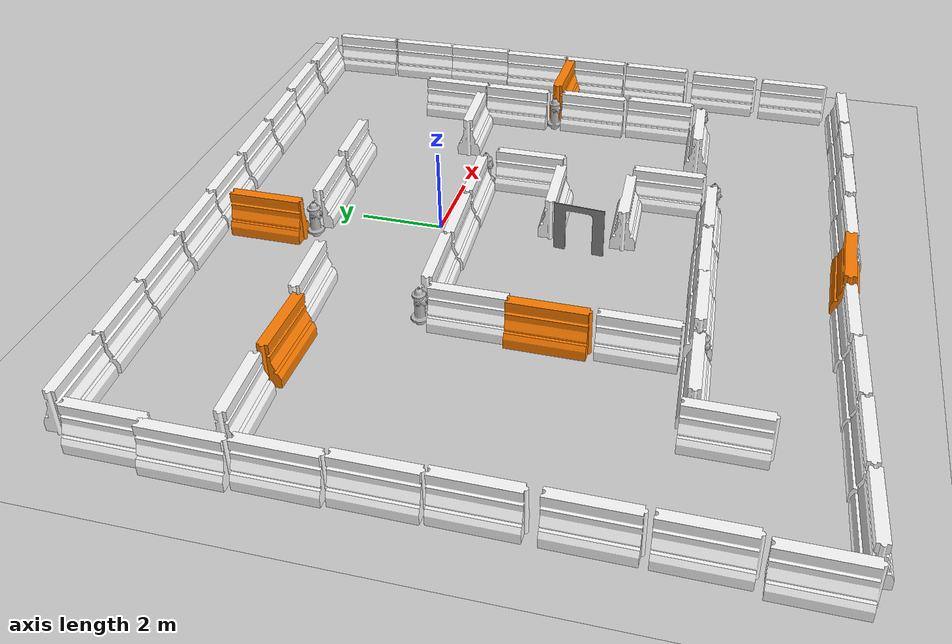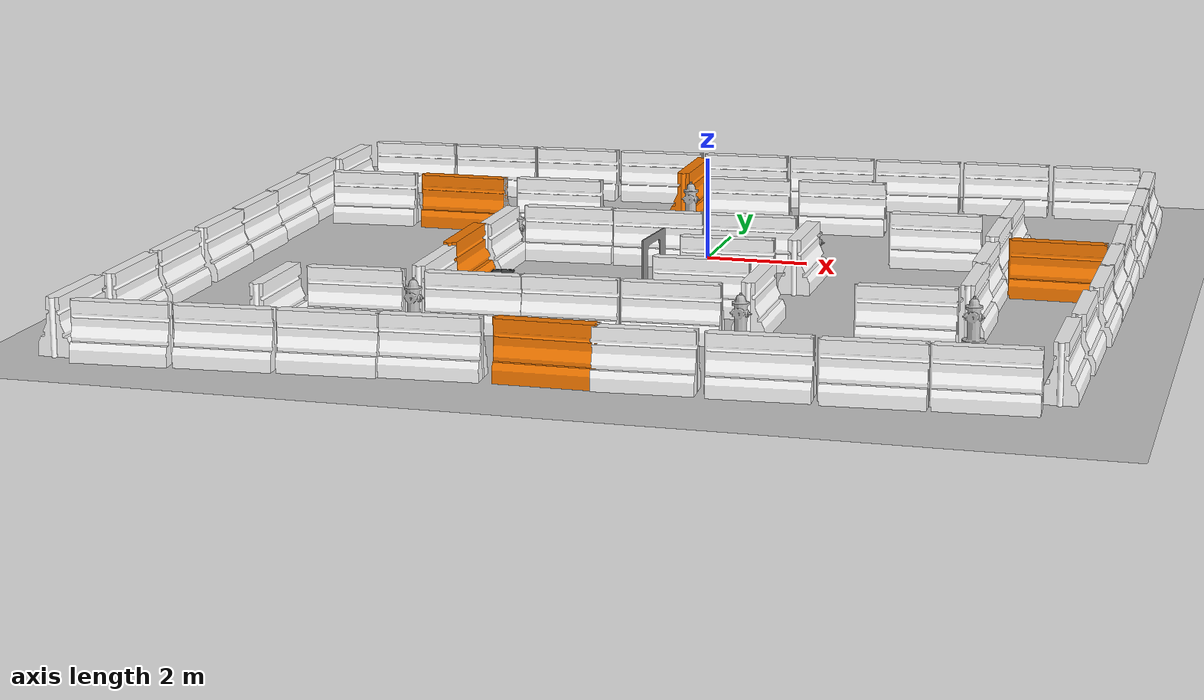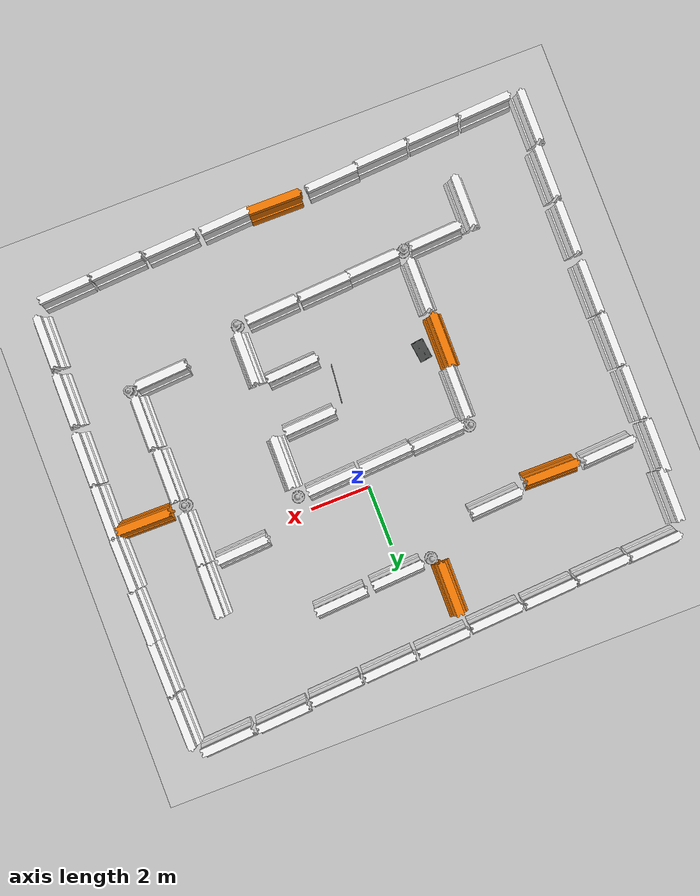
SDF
<sdf version="1.7">
 <world name="default">
  <light name="sun" type="directional">
   <pose>0 0 10 0 -0 0</pose>
   <diffuse>0.8 0.8 0.8 1</diffuse>
   <specular>0.2 0.2 0.2 1</specular>
   <attenuation>
    <range>1000</range>
    <constant>0.9</constant>
    <linear>0.01</linear>
    <quadratic>0.001</quadratic>
   </attenuation>
   <direction>-0.5 0.1 -0.9</direction>
   <spot><inner_angle>0</inner_angle><outer_angle>0</outer_angle><falloff>0</falloff></spot>
  </light>
  <model name="ground_plane">
   <static>1</static>
   <link name="link">
    <collision name="collision">
     <geometry><plane><normal>0 0 1</normal><size>100 100</size></plane></geometry>
     <surface><friction><ode><mu>100</mu><mu2>50</mu2></ode></friction></surface>
    </collision>
    <visual name="visual">
     <cast_shadows>0</cast_shadows>
     <geometry><plane><normal>0 0 1</normal><size>100 100</size></plane></geometry>
     <material>
      <script><uri>file://media/materials/scripts/gazebo.material</uri><name>Gazebo/Grey</name></script>
     </material>
    </visual>
   </link>
  </model>
  <gravity>0 0 -9.8</gravity>
  <magnetic_field>6e-06 2.3e-05 -4.2e-05</magnetic_field>
  <atmosphere type="adiabatic"/>
  <physics type="ode">
   <max_step_size>0.001</max_step_size>
   <real_time_factor>1</real_time_factor>
   <real_time_update_rate>1000</real_time_update_rate>
  </physics>
  <scene><ambient>0.4 0.4 0.4 1</ambient><background>0.7 0.7 0.7 1</background><shadows>1</shadows></scene>
  <spherical_coordinates>
   <surface_model>EARTH_WGS84</surface_model>
   <latitude_deg>0</latitude_deg>
   <longitude_deg>0</longitude_deg>
   <elevation>0</elevation>
   <heading_deg>0</heading_deg>
  </spherical_coordinates>
  <model name="drc_practice_white_jersey_barrier">
   <static>1</static>
   <link name="link">
    <visual name="visual">
     <geometry>
      <mesh><uri>model://drc_practice_white_jersey_barrier/meshes/jersey_barrier.dae</uri></mesh>
     </geometry>
    </visual>
    <collision name="collision">
     <geometry>
      <mesh><uri>model://drc_practice_white_jersey_barrier/meshes/jersey_barrier.dae</uri></mesh>
     </geometry>
    </collision>
   </link>
   <pose>2.28293 -1.69761 0 0 -0 0</pose>
  </model>
  <model name="drc_practice_white_jersey_barrier_clone_0">
   <static>1</static>
   <link name="link">
    <visual name="visual">
     <geometry>
      <mesh><uri>model://drc_practice_white_jersey_barrier/meshes/jersey_barrier.dae</uri></mesh>
     </geometry>
    </visual>
    <collision name="collision">
     <geometry>
      <mesh><uri>model://drc_practice_white_jersey_barrier/meshes/jersey_barrier.dae</uri></mesh>
     </geometry>
    </collision>
   </link>
   <pose>2.20471 -5.22278 0 0 -0 0</pose>
  </model>
  <model name="drc_practice_white_jersey_barrier_clone_1">
   <static>1</static>
   <link name="link">
    <visual name="visual">
     <geometry>
      <mesh><uri>model://drc_practice_white_jersey_barrier/meshes/jersey_barrier.dae</uri></mesh>
     </geometry>
    </visual>
    <collision name="collision">
     <geometry>
      <mesh><uri>model://drc_practice_white_jersey_barrier/meshes/jersey_barrier.dae</uri></mesh>
     </geometry>
    </collision>
   </link>
   <pose>0.923191 -6.38924 0 0 0 -1.50381</pose>
  </model>
  <model name="drc_practice_white_jersey_barrier_clone_1_clone">
   <static>1</static>
   <link name="link">
    <visual name="visual">
     <geometry>
      <mesh><uri>model://drc_practice_white_jersey_barrier/meshes/jersey_barrier.dae</uri></mesh>
     </geometry>
    </visual>
    <collision name="collision">
     <geometry>
      <mesh><uri>model://drc_practice_white_jersey_barrier/meshes/jersey_barrier.dae</uri></mesh>
     </geometry>
    </collision>
   </link>
   <pose>-0.90797 -6.48566 0 0 0 -1.50381</pose>
  </model>
  <model name="drc_practice_white_jersey_barrier_clone_1_clone_0">
   <static>1</static>
   <link name="link">
    <visual name="visual">
     <geometry>
      <mesh><uri>model://drc_practice_white_jersey_barrier/meshes/jersey_barrier.dae</uri></mesh>
     </geometry>
    </visual>
    <collision name="collision">
     <geometry>
      <mesh><uri>model://drc_practice_white_jersey_barrier/meshes/jersey_barrier.dae</uri></mesh>
     </geometry>
    </collision>
   </link>
   <pose>-2.63238 -6.61634 0 0 0 -1.50381</pose>
  </model>
  <model name="drc_practice_white_jersey_barrier_clone_0_clone">
   <static>1</static>
   <link name="link">
    <visual name="visual">
     <geometry>
      <mesh><uri>model://drc_practice_white_jersey_barrier/meshes/jersey_barrier.dae</uri></mesh>
     </geometry>
    </visual>
    <collision name="collision">
     <geometry>
      <mesh><uri>model://drc_practice_white_jersey_barrier/meshes/jersey_barrier.dae</uri></mesh>
     </geometry>
    </collision>
   </link>
   <pose>-3.78567 -5.4642 0 0 -0 0</pose>
  </model>
  <model name="drc_practice_white_jersey_barrier_clone_0_clone_1">
   <static>1</static>
   <link name="link">
    <visual name="visual">
     <geometry>
      <mesh><uri>model://drc_practice_white_jersey_barrier/meshes/jersey_barrier.dae</uri></mesh>
     </geometry>
    </visual>
    <collision name="collision">
     <geometry>
      <mesh><uri>model://drc_practice_white_jersey_barrier/meshes/jersey_barrier.dae</uri></mesh>
     </geometry>
    </collision>
   </link>
   <pose>-3.72738 -1.82263 0 0 -0 0</pose>
  </model>
  <model name="drc_practice_white_jersey_barrier_clone_1_clone_0_clone">
   <static>1</static>
   <link name="link">
    <visual name="visual">
     <geometry>
      <mesh><uri>model://drc_practice_white_jersey_barrier/meshes/jersey_barrier.dae</uri></mesh>
     </geometry>
    </visual>
    <collision name="collision">
     <geometry>
      <mesh><uri>model://drc_practice_white_jersey_barrier/meshes/jersey_barrier.dae</uri></mesh>
     </geometry>
    </collision>
   </link>
   <pose>1.03443 -0.601917 0 0 0 -1.50381</pose>
  </model>
  <model name="drc_practice_white_jersey_barrier_clone_1_clone_0_clone_0">
   <static>1</static>
   <link name="link">
    <visual name="visual">
     <geometry>
      <mesh><uri>model://drc_practice_white_jersey_barrier/meshes/jersey_barrier.dae</uri></mesh>
     </geometry>
    </visual>
    <collision name="collision">
     <geometry>
      <mesh><uri>model://drc_practice_white_jersey_barrier/meshes/jersey_barrier.dae</uri></mesh>
     </geometry>
    </collision>
   </link>
   <pose>-0.802949 -0.700075 0 0 0 -1.50381</pose>
  </model>
  <model name="drc_practice_white_jersey_barrier_clone_1_clone_0_clone_1">
   <static>1</static>
   <link name="link">
    <visual name="visual">
     <geometry>
      <mesh><uri>model://drc_practice_white_jersey_barrier/meshes/jersey_barrier.dae</uri></mesh>
     </geometry>
    </visual>
    <collision name="collision">
     <geometry>
      <mesh><uri>model://drc_practice_white_jersey_barrier/meshes/jersey_barrier.dae</uri></mesh>
     </geometry>
    </collision>
   </link>
   <pose>-2.58924 -0.762928 0 0 0 -1.50381</pose>
  </model>
  <model name="drc_practice_white_jersey_barrier_clone_1_clone_0_clone_0_clone">
   <static>1</static>
   <link name="link">
    <visual name="visual">
     <geometry>
      <mesh><uri>model://drc_practice_white_jersey_barrier/meshes/jersey_barrier.dae</uri></mesh>
     </geometry>
    </visual>
    <collision name="collision">
     <geometry>
      <mesh><uri>model://drc_practice_white_jersey_barrier/meshes/jersey_barrier.dae</uri></mesh>
     </geometry>
    </collision>
   </link>
   <pose>-4.14717 5.13906 0 0 0 -1.50381</pose>
  </model>
  <model name="drc_practice_white_jersey_barrier_clone_1_clone_0_clone_0_clone_0">
   <static>1</static>
   <link name="link">
    <visual name="visual">
     <geometry>
      <mesh><uri>model://drc_practice_white_jersey_barrier/meshes/jersey_barrier.dae</uri></mesh>
     </geometry>
    </visual>
    <collision name="collision">
     <geometry>
      <mesh><uri>model://drc_practice_white_jersey_barrier/meshes/jersey_barrier.dae</uri></mesh>
     </geometry>
    </collision>
   </link>
   <pose>-2.28002 5.23585 0 0 0 -1.50381</pose>
  </model>
  <model name="drc_practice_white_jersey_barrier_clone_1_clone_0_clone_0_clone_1">
   <static>1</static>
   <link name="link">
    <visual name="visual">
     <geometry>
      <mesh><uri>model://drc_practice_white_jersey_barrier/meshes/jersey_barrier.dae</uri></mesh>
     </geometry>
    </visual>
    <collision name="collision">
     <geometry>
      <mesh><uri>model://drc_practice_white_jersey_barrier/meshes/jersey_barrier.dae</uri></mesh>
     </geometry>
    </collision>
   </link>
   <pose>-0.43229 5.39169 0 0 0 -1.50381</pose>
  </model>
  <model name="drc_practice_white_jersey_barrier_clone_1_clone_0_clone_0_clone_2">
   <static>1</static>
   <link name="link">
    <visual name="visual">
     <geometry>
      <mesh><uri>model://drc_practice_white_jersey_barrier/meshes/jersey_barrier.dae</uri></mesh>
     </geometry>
    </visual>
    <collision name="collision">
     <geometry>
      <mesh><uri>model://drc_practice_white_jersey_barrier/meshes/jersey_barrier.dae</uri></mesh>
     </geometry>
    </collision>
   </link>
   <pose>1.42528 5.4904 0 0 0 -1.50381</pose>
  </model>
  <model name="drc_practice_white_jersey_barrier_clone_1_clone_0_clone_0_clone_3">
   <static>1</static>
   <link name="link">
    <visual name="visual">
     <geometry>
      <mesh><uri>model://drc_practice_white_jersey_barrier/meshes/jersey_barrier.dae</uri></mesh>
     </geometry>
    </visual>
    <collision name="collision">
     <geometry>
      <mesh><uri>model://drc_practice_white_jersey_barrier/meshes/jersey_barrier.dae</uri></mesh>
     </geometry>
    </collision>
   </link>
   <pose>3.26826 5.60639 0 0 0 -1.50381</pose>
  </model>
  <model name="drc_practice_white_jersey_barrier_clone_1_clone_0_clone_0_clone_4">
   <static>1</static>
   <link name="link">
    <visual name="visual">
     <geometry>
      <mesh><uri>model://drc_practice_white_jersey_barrier/meshes/jersey_barrier.dae</uri></mesh>
     </geometry>
    </visual>
    <collision name="collision">
     <geometry>
      <mesh><uri>model://drc_practice_white_jersey_barrier/meshes/jersey_barrier.dae</uri></mesh>
     </geometry>
    </collision>
   </link>
   <pose>5.13372 5.78611 0 0 0 -1.50381</pose>
  </model>
  <model name="drc_practice_white_jersey_barrier_clone_1_clone_0_clone_0_clone_5">
   <static>1</static>
   <link name="link">
    <visual name="visual">
     <geometry>
      <mesh><uri>model://drc_practice_white_jersey_barrier/meshes/jersey_barrier.dae</uri></mesh>
     </geometry>
    </visual>
    <collision name="collision">
     <geometry>
      <mesh><uri>model://drc_practice_white_jersey_barrier/meshes/jersey_barrier.dae</uri></mesh>
     </geometry>
    </collision>
   </link>
   <pose>7.03167 5.86321 0 0 0 -1.50381</pose>
  </model>
  <model name="drc_practice_white_jersey_barrier_clone_1_clone_0_clone_0_clone_6">
   <static>1</static>
   <link name="link">
    <visual name="visual">
     <geometry>
      <mesh><uri>model://drc_practice_white_jersey_barrier/meshes/jersey_barrier.dae</uri></mesh>
     </geometry>
    </visual>
    <collision name="collision">
     <geometry>
      <mesh><uri>model://drc_practice_white_jersey_barrier/meshes/jersey_barrier.dae</uri></mesh>
     </geometry>
    </collision>
   </link>
   <pose>8.12545 4.81873 0 0 0 -3.11726</pose>
  </model>
  <model name="drc_practice_white_jersey_barrier_clone_1_clone_0_clone_0_clone_6_clone">
   <static>1</static>
   <link name="link">
    <visual name="visual">
     <geometry>
      <mesh><uri>model://drc_practice_white_jersey_barrier/meshes/jersey_barrier.dae</uri></mesh>
     </geometry>
    </visual>
    <collision name="collision">
     <geometry>
      <mesh><uri>model://drc_practice_white_jersey_barrier/meshes/jersey_barrier.dae</uri></mesh>
     </geometry>
    </collision>
   </link>
   <pose>8.15444 3.01091 0 0 0 -3.11726</pose>
  </model>
  <model name="drc_practice_white_jersey_barrier_clone_1_clone_0_clone_0_clone_6_clone_0">
   <static>1</static>
   <link name="link">
    <visual name="visual">
     <geometry>
      <mesh><uri>model://drc_practice_white_jersey_barrier/meshes/jersey_barrier.dae</uri></mesh>
     </geometry>
    </visual>
    <collision name="collision">
     <geometry>
      <mesh><uri>model://drc_practice_white_jersey_barrier/meshes/jersey_barrier.dae</uri></mesh>
     </geometry>
    </collision>
   </link>
   <pose>8.16977 1.28818 0 0 0 -3.11726</pose>
  </model>
  <model name="drc_practice_white_jersey_barrier_clone_1_clone_0_clone_0_clone_6_clone_1">
   <static>1</static>
   <link name="link">
    <visual name="visual">
     <geometry>
      <mesh><uri>model://drc_practice_white_jersey_barrier/meshes/jersey_barrier.dae</uri></mesh>
     </geometry>
    </visual>
    <collision name="collision">
     <geometry>
      <mesh><uri>model://drc_practice_white_jersey_barrier/meshes/jersey_barrier.dae</uri></mesh>
     </geometry>
    </collision>
   </link>
   <pose>8.12985 -0.483638 0 0 0 -3.11726</pose>
  </model>
  <model name="drc_practice_white_jersey_barrier_clone_1_clone_0_clone_0_clone_clone">
   <static>1</static>
   <link name="link">
    <visual name="visual">
     <geometry>
      <mesh><uri>model://drc_practice_white_jersey_barrier/meshes/jersey_barrier.dae</uri></mesh>
     </geometry>
    </visual>
    <collision name="collision">
     <geometry>
      <mesh><uri>model://drc_practice_white_jersey_barrier/meshes/jersey_barrier.dae</uri></mesh>
     </geometry>
    </collision>
   </link>
   <pose>-5.96478 5.01412 0 0 0 -1.50381</pose>
  </model>
  <model name="drc_practice_white_jersey_barrier_clone_1_clone_0_clone_0_clone_clone_0">
   <static>1</static>
   <link name="link">
    <visual name="visual">
     <geometry>
      <mesh><uri>model://drc_practice_white_jersey_barrier/meshes/jersey_barrier.dae</uri></mesh>
     </geometry>
    </visual>
    <collision name="collision">
     <geometry>
      <mesh><uri>model://drc_practice_white_jersey_barrier/meshes/jersey_barrier.dae</uri></mesh>
     </geometry>
    </collision>
   </link>
   <pose>-7.78928 4.92624 0 0 0 -1.50381</pose>
  </model>
  <model name="drc_practice_white_jersey_barrier_clone_0_clone_1_clone">
   <static>1</static>
   <link name="link">
    <visual name="visual">
     <geometry>
      <mesh><uri>model://drc_practice_white_jersey_barrier/meshes/jersey_barrier.dae</uri></mesh>
     </geometry>
    </visual>
    <collision name="collision">
     <geometry>
      <mesh><uri>model://drc_practice_white_jersey_barrier/meshes/jersey_barrier.dae</uri></mesh>
     </geometry>
    </collision>
   </link>
   <pose>-8.84246 3.6262 0 0 -0 0</pose>
  </model>
  <model name="drc_practice_white_jersey_barrier_clone_0_clone_1_clone_clone">
   <static>1</static>
   <link name="link">
    <visual name="visual">
     <geometry>
      <mesh><uri>model://drc_practice_white_jersey_barrier/meshes/jersey_barrier.dae</uri></mesh>
     </geometry>
    </visual>
    <collision name="collision">
     <geometry>
      <mesh><uri>model://drc_practice_white_jersey_barrier/meshes/jersey_barrier.dae</uri></mesh>
     </geometry>
    </collision>
   </link>
   <pose>-9 2 0 0 -0 0</pose>
  </model>
  <model name="drc_practice_white_jersey_barrier_clone_0_clone_1_clone_clone_clone">
   <static>1</static>
   <link name="link">
    <visual name="visual">
     <geometry>
      <mesh><uri>model://drc_practice_white_jersey_barrier/meshes/jersey_barrier.dae</uri></mesh>
     </geometry>
    </visual>
    <collision name="collision">
     <geometry>
      <mesh><uri>model://drc_practice_white_jersey_barrier/meshes/jersey_barrier.dae</uri></mesh>
     </geometry>
    </collision>
   </link>
   <pose>-8.92732 0.171485 0 0 -0 0</pose>
  </model>
  <model name="drc_practice_white_jersey_barrier_clone_0_clone_1_clone_clone_clone_0">
   <static>1</static>
   <link name="link">
    <visual name="visual">
     <geometry>
      <mesh><uri>model://drc_practice_white_jersey_barrier/meshes/jersey_barrier.dae</uri></mesh>
     </geometry>
    </visual>
    <collision name="collision">
     <geometry>
      <mesh><uri>model://drc_practice_white_jersey_barrier/meshes/jersey_barrier.dae</uri></mesh>
     </geometry>
    </collision>
   </link>
   <pose>-8.88014 -1.64956 0 0 -0 0</pose>
  </model>
  <model name="drc_practice_white_jersey_barrier_clone_0_clone_1_clone_clone_clone_1">
   <static>1</static>
   <link name="link">
    <visual name="visual">
     <geometry>
      <mesh><uri>model://drc_practice_white_jersey_barrier/meshes/jersey_barrier.dae</uri></mesh>
     </geometry>
    </visual>
    <collision name="collision">
     <geometry>
      <mesh><uri>model://drc_practice_white_jersey_barrier/meshes/jersey_barrier.dae</uri></mesh>
     </geometry>
    </collision>
   </link>
   <pose>8.13271 -2.23054 0 0 -0 0</pose>
  </model>
  <model name="drc_practice_white_jersey_barrier_clone_0_clone_1_clone_clone_clone_2">
   <static>1</static>
   <link name="link">
    <visual name="visual">
     <geometry>
      <mesh><uri>model://drc_practice_white_jersey_barrier/meshes/jersey_barrier.dae</uri></mesh>
     </geometry>
    </visual>
    <collision name="collision">
     <geometry>
      <mesh><uri>model://drc_practice_white_jersey_barrier/meshes/jersey_barrier.dae</uri></mesh>
     </geometry>
    </collision>
   </link>
   <pose>8.11804 -4.03899 0 0 -0 0</pose>
  </model>
  <model name="drc_practice_white_jersey_barrier_clone_0_clone_1_clone_clone_clone_3">
   <static>1</static>
   <link name="link">
    <visual name="visual">
     <geometry>
      <mesh><uri>model://drc_practice_white_jersey_barrier/meshes/jersey_barrier.dae</uri></mesh>
     </geometry>
    </visual>
    <collision name="collision">
     <geometry>
      <mesh><uri>model://drc_practice_white_jersey_barrier/meshes/jersey_barrier.dae</uri></mesh>
     </geometry>
    </collision>
   </link>
   <pose>8.03523 -6.0112 0 0 -0 0</pose>
  </model>
  <model name="drc_practice_white_jersey_barrier_clone_1_clone_0_clone_1_clone">
   <static>1</static>
   <link name="link">
    <visual name="visual">
     <geometry>
      <mesh><uri>model://drc_practice_white_jersey_barrier/meshes/jersey_barrier.dae</uri></mesh>
     </geometry>
    </visual>
    <collision name="collision">
     <geometry>
      <mesh><uri>model://drc_practice_white_jersey_barrier/meshes/jersey_barrier.dae</uri></mesh>
     </geometry>
    </collision>
   </link>
   <pose>1.04172 -2.64487 0 0 0 -1.50381</pose>
  </model>
  <model name="drc_practice_white_jersey_barrier_clone_1_clone_0_clone_1_clone_0">
   <static>1</static>
   <link name="link">
    <visual name="visual">
     <geometry>
      <mesh><uri>model://drc_practice_white_jersey_barrier/meshes/jersey_barrier.dae</uri></mesh>
     </geometry>
    </visual>
    <collision name="collision">
     <geometry>
      <mesh><uri>model://drc_practice_white_jersey_barrier/meshes/jersey_barrier.dae</uri></mesh>
     </geometry>
    </collision>
   </link>
   <pose>0.971986 -4.41204 0 0 0 -1.50381</pose>
  </model>
  <model name="drc_practice_white_jersey_barrier_clone_0_clone_1_clone_clone_clone_0_clone">
   <static>1</static>
   <link name="link">
    <visual name="visual">
     <geometry>
      <mesh><uri>model://drc_practice_white_jersey_barrier/meshes/jersey_barrier.dae</uri></mesh>
     </geometry>
    </visual>
    <collision name="collision">
     <geometry>
      <mesh><uri>model://drc_practice_white_jersey_barrier/meshes/jersey_barrier.dae</uri></mesh>
     </geometry>
    </collision>
   </link>
   <pose>-8.86203 -3.4675 0 0 -0 0</pose>
  </model>
  <model name="drc_practice_white_jersey_barrier_clone_0_clone_1_clone_clone_clone_0_clone_0">
   <static>1</static>
   <link name="link">
    <visual name="visual">
     <geometry>
      <mesh><uri>model://drc_practice_white_jersey_barrier/meshes/jersey_barrier.dae</uri></mesh>
     </geometry>
    </visual>
    <collision name="collision">
     <geometry>
      <mesh><uri>model://drc_practice_white_jersey_barrier/meshes/jersey_barrier.dae</uri></mesh>
     </geometry>
    </collision>
   </link>
   <pose>-8.86916 -5.49358 0 0 -0 0</pose>
  </model>
  <model name="drc_practice_white_jersey_barrier_clone_0_clone_1_clone_clone_clone_0_clone_1">
   <static>1</static>
   <link name="link">
    <visual name="visual">
     <geometry>
      <mesh><uri>model://drc_practice_white_jersey_barrier/meshes/jersey_barrier.dae</uri></mesh>
     </geometry>
    </visual>
    <collision name="collision">
     <geometry>
      <mesh><uri>model://drc_practice_white_jersey_barrier/meshes/jersey_barrier.dae</uri></mesh>
     </geometry>
    </collision>
   </link>
   <pose>-8.88549 -7.40039 0 0 -0 0</pose>
  </model>
  <model name="drc_practice_white_jersey_barrier_clone_0_clone_1_clone_clone_clone_0_clone_2">
   <static>1</static>
   <link name="link">
    <visual name="visual">
     <geometry>
      <mesh><uri>model://drc_practice_white_jersey_barrier/meshes/jersey_barrier.dae</uri></mesh>
     </geometry>
    </visual>
    <collision name="collision">
     <geometry>
      <mesh><uri>model://drc_practice_white_jersey_barrier/meshes/jersey_barrier.dae</uri></mesh>
     </geometry>
    </collision>
   </link>
   <pose>-9.03659 -9.29391 0 0 -0 0</pose>
  </model>
  <model name="drc_practice_white_jersey_barrier_clone_1_clone_0_clone_2">
   <static>1</static>
   <link name="link">
    <visual name="visual">
     <geometry>
      <mesh><uri>model://drc_practice_white_jersey_barrier/meshes/jersey_barrier.dae</uri></mesh>
     </geometry>
    </visual>
    <collision name="collision">
     <geometry>
      <mesh><uri>model://drc_practice_white_jersey_barrier/meshes/jersey_barrier.dae</uri></mesh>
     </geometry>
    </collision>
   </link>
   <pose>-7.7667 -10.1108 0 0 0 -1.50381</pose>
  </model>
  <model name="drc_practice_white_jersey_barrier_clone_1_clone_0_clone_3">
   <static>1</static>
   <link name="link">
    <visual name="visual">
     <geometry>
      <mesh><uri>model://drc_practice_white_jersey_barrier/meshes/jersey_barrier.dae</uri></mesh>
     </geometry>
    </visual>
    <collision name="collision">
     <geometry>
      <mesh><uri>model://drc_practice_white_jersey_barrier/meshes/jersey_barrier.dae</uri></mesh>
     </geometry>
    </collision>
   </link>
   <pose>-5.93558 -9.97855 0 0 0 -1.50381</pose>
  </model>
  <model name="drc_practice_white_jersey_barrier_clone_1_clone_0_clone_4">
   <static>1</static>
   <link name="link">
    <visual name="visual">
     <geometry>
      <mesh><uri>model://drc_practice_white_jersey_barrier/meshes/jersey_barrier.dae</uri></mesh>
     </geometry>
    </visual>
    <collision name="collision">
     <geometry>
      <mesh><uri>model://drc_practice_white_jersey_barrier/meshes/jersey_barrier.dae</uri></mesh>
     </geometry>
    </collision>
   </link>
   <pose>-4.12182 -9.84751 0 0 0 -1.50381</pose>
  </model>
  <model name="drc_practice_white_jersey_barrier_clone_1_clone_0_clone_5">
   <static>1</static>
   <link name="link">
    <visual name="visual">
     <geometry>
      <mesh><uri>model://drc_practice_white_jersey_barrier/meshes/jersey_barrier.dae</uri></mesh>
     </geometry>
    </visual>
    <collision name="collision">
     <geometry>
      <mesh><uri>model://drc_practice_white_jersey_barrier/meshes/jersey_barrier.dae</uri></mesh>
     </geometry>
    </collision>
   </link>
   <pose>-2.37511 -9.67534 0 0 0 -1.50381</pose>
  </model>
  <model name="drc_practice_white_jersey_barrier_clone_1_clone_0_clone_7">
   <static>1</static>
   <link name="link">
    <visual name="visual">
     <geometry>
      <mesh><uri>model://drc_practice_white_jersey_barrier/meshes/jersey_barrier.dae</uri></mesh>
     </geometry>
    </visual>
    <collision name="collision">
     <geometry>
      <mesh><uri>model://drc_practice_white_jersey_barrier/meshes/jersey_barrier.dae</uri></mesh>
     </geometry>
    </collision>
   </link>
   <pose>1.2799 -9.59989 0 0 0 -1.50381</pose>
  </model>
  <model name="drc_practice_white_jersey_barrier_clone_1_clone_0_clone_8">
   <static>1</static>
   <link name="link">
    <visual name="visual">
     <geometry>
      <mesh><uri>model://drc_practice_white_jersey_barrier/meshes/jersey_barrier.dae</uri></mesh>
     </geometry>
    </visual>
    <collision name="collision">
     <geometry>
      <mesh><uri>model://drc_practice_white_jersey_barrier/meshes/jersey_barrier.dae</uri></mesh>
     </geometry>
    </collision>
   </link>
   <pose>3.20169 -9.53003 0 0 0 -1.50381</pose>
  </model>
  <model name="drc_practice_white_jersey_barrier_clone_1_clone_0_clone_9">
   <static>1</static>
   <link name="link">
    <visual name="visual">
     <geometry>
      <mesh><uri>model://drc_practice_white_jersey_barrier/meshes/jersey_barrier.dae</uri></mesh>
     </geometry>
    </visual>
    <collision name="collision">
     <geometry>
      <mesh><uri>model://drc_practice_white_jersey_barrier/meshes/jersey_barrier.dae</uri></mesh>
     </geometry>
    </collision>
   </link>
   <pose>5.06623 -9.46271 0 0 0 -1.50381</pose>
  </model>
  <model name="drc_practice_white_jersey_barrier_clone_1_clone_0_clone_10">
   <static>1</static>
   <link name="link">
    <visual name="visual">
     <geometry>
      <mesh><uri>model://drc_practice_white_jersey_barrier/meshes/jersey_barrier.dae</uri></mesh>
     </geometry>
    </visual>
    <collision name="collision">
     <geometry>
      <mesh><uri>model://drc_practice_white_jersey_barrier/meshes/jersey_barrier.dae</uri></mesh>
     </geometry>
    </collision>
   </link>
   <pose>6.87355 -9.34117 0 0 0 -1.50381</pose>
  </model>
  <model name="drc_practice_white_jersey_barrier_clone_0_clone_1_clone_clone_clone_3_clone">
   <static>1</static>
   <link name="link">
    <visual name="visual">
     <geometry>
      <mesh><uri>model://drc_practice_white_jersey_barrier/meshes/jersey_barrier.dae</uri></mesh>
     </geometry>
    </visual>
    <collision name="collision">
     <geometry>
      <mesh><uri>model://drc_practice_white_jersey_barrier/meshes/jersey_barrier.dae</uri></mesh>
     </geometry>
    </collision>
   </link>
   <pose>7.97316 -7.96607 0 0 -0 0</pose>
  </model>
  <model name="drc_practice_white_jersey_barrier_clone_1_clone_0_clone_0_clone_clone_clone">
   <static>1</static>
   <link name="link">
    <visual name="visual">
     <geometry>
      <mesh><uri>model://drc_practice_white_jersey_barrier/meshes/jersey_barrier.dae</uri></mesh>
     </geometry>
    </visual>
    <collision name="collision">
     <geometry>
      <mesh><uri>model://drc_practice_white_jersey_barrier/meshes/jersey_barrier.dae</uri></mesh>
     </geometry>
    </collision>
   </link>
   <pose>-7.51961 1.57919 0 0 0 -1.50381</pose>
  </model>
  <model name="drc_practice_white_jersey_barrier_clone_1_clone_0_clone_0_clone_clone_clone_1">
   <static>1</static>
   <link name="link">
    <visual name="visual">
     <geometry>
      <mesh><uri>model://drc_practice_white_jersey_barrier/meshes/jersey_barrier.dae</uri></mesh>
     </geometry>
    </visual>
    <collision name="collision">
     <geometry>
      <mesh><uri>model://drc_practice_white_jersey_barrier/meshes/jersey_barrier.dae</uri></mesh>
     </geometry>
    </collision>
   </link>
   <pose>-3.58139 1.8598 0 0 0 -1.50381</pose>
  </model>
  <model name="drc_practice_white_jersey_barrier_clone_1_clone_0_clone_0_clone_clone_clone_1_clone">
   <static>1</static>
   <link name="link">
    <visual name="visual">
     <geometry>
      <mesh><uri>model://drc_practice_white_jersey_barrier/meshes/jersey_barrier.dae</uri></mesh>
     </geometry>
    </visual>
    <collision name="collision">
     <geometry>
      <mesh><uri>model://drc_practice_white_jersey_barrier/meshes/jersey_barrier.dae</uri></mesh>
     </geometry>
    </collision>
   </link>
   <pose>0.159121 2.88471 0 0 0 -1.50381</pose>
  </model>
  <model name="drc_practice_white_jersey_barrier_clone_1_clone_0_clone_7_clone">
   <static>1</static>
   <link name="link">
    <visual name="visual">
     <geometry>
      <mesh><uri>model://drc_practice_white_jersey_barrier/meshes/jersey_barrier.dae</uri></mesh>
     </geometry>
    </visual>
    <collision name="collision">
     <geometry>
      <mesh><uri>model://drc_practice_white_jersey_barrier/meshes/jersey_barrier.dae</uri></mesh>
     </geometry>
    </collision>
   </link>
   <pose>2.132 3.02761 0 0 0 -1.50381</pose>
  </model>
  <model name="drc_practice_white_jersey_barrier_clone_1_clone_0_clone_0_clone_clone_clone_0_clone">
   <static>1</static>
   <link name="link">
    <visual name="visual">
     <geometry>
      <mesh><uri>model://drc_practice_white_jersey_barrier/meshes/jersey_barrier.dae</uri></mesh>
     </geometry>
    </visual>
    <collision name="collision">
     <geometry>
      <mesh><uri>model://drc_practice_white_jersey_barrier/meshes/jersey_barrier.dae</uri></mesh>
     </geometry>
    </collision>
   </link>
   <pose>-4.80016 -6.75122 0 0 0 -1.50381</pose>
  </model>
  <model name="drc_practice_white_jersey_barrier_clone_0_clone_1_clone_clone_clone_0_clone_0_clone">
   <static>1</static>
   <link name="link">
    <visual name="visual">
     <geometry>
      <mesh><uri>model://drc_practice_white_jersey_barrier/meshes/jersey_barrier.dae</uri></mesh>
     </geometry>
    </visual>
    <collision name="collision">
     <geometry>
      <mesh><uri>model://drc_practice_white_jersey_barrier/meshes/jersey_barrier.dae</uri></mesh>
     </geometry>
    </collision>
   </link>
   <pose>-6.06343 -7.46933 0 0 -0 0</pose>
  </model>
  <model name="drc_practice_white_jersey_barrier_clone_0_clone_2">
   <static>1</static>
   <link name="link">
    <visual name="visual">
     <geometry>
      <mesh><uri>model://drc_practice_white_jersey_barrier/meshes/jersey_barrier.dae</uri></mesh>
     </geometry>
    </visual>
    <collision name="collision">
     <geometry>
      <mesh><uri>model://drc_practice_white_jersey_barrier/meshes/jersey_barrier.dae</uri></mesh>
     </geometry>
    </collision>
   </link>
   <pose>5.94631 -4.46314 0 0 -0 0</pose>
  </model>
  <model name="drc_practice_white_jersey_barrier_clone_1_clone_0_clone_1_clone_0_clone">
   <static>1</static>
   <link name="link">
    <visual name="visual">
     <geometry>
      <mesh><uri>model://drc_practice_white_jersey_barrier/meshes/jersey_barrier.dae</uri></mesh>
     </geometry>
    </visual>
    <collision name="collision">
     <geometry>
      <mesh><uri>model://drc_practice_white_jersey_barrier/meshes/jersey_barrier.dae</uri></mesh>
     </geometry>
    </collision>
   </link>
   <pose>4.94903 -5.66745 0 0 0 -1.50381</pose>
  </model>
  <model name="drc_practice_white_jersey_barrier_clone_2">
   <static>1</static>
   <link name="link">
    <visual name="visual">
     <geometry>
      <mesh><uri>model://drc_practice_white_jersey_barrier/meshes/jersey_barrier.dae</uri></mesh>
     </geometry>
    </visual>
    <collision name="collision">
     <geometry>
      <mesh><uri>model://drc_practice_white_jersey_barrier/meshes/jersey_barrier.dae</uri></mesh>
     </geometry>
    </collision>
   </link>
   <pose>5.80574 -0.462448 0 0 -0 0</pose>
  </model>
  <model name="drc_practice_white_jersey_barrier_clone_clone">
   <static>1</static>
   <link name="link">
    <visual name="visual">
     <geometry>
      <mesh><uri>model://drc_practice_white_jersey_barrier/meshes/jersey_barrier.dae</uri></mesh>
     </geometry>
    </visual>
    <collision name="collision">
     <geometry>
      <mesh><uri>model://drc_practice_white_jersey_barrier/meshes/jersey_barrier.dae</uri></mesh>
     </geometry>
    </collision>
   </link>
   <pose>5.83021 1.30917 0 0 -0 0</pose>
  </model>
  <model name="drc_practice_white_jersey_barrier_clone_1_clone_0_clone_7_clone_clone">
   <static>1</static>
   <link name="link">
    <visual name="visual">
     <geometry>
      <mesh><uri>model://drc_practice_white_jersey_barrier/meshes/jersey_barrier.dae</uri></mesh>
     </geometry>
    </visual>
    <collision name="collision">
     <geometry>
      <mesh><uri>model://drc_practice_white_jersey_barrier/meshes/jersey_barrier.dae</uri></mesh>
     </geometry>
    </collision>
   </link>
   <pose>4.48682 0.411218 0 0 0 -1.50381</pose>
  </model>
  <model name="drc_practice_organge_jersey_barrier">
   <static>1</static>
   <link name="link">
    <visual name="visual">
     <geometry>
      <mesh><uri>model://drc_practice_orange_jersey_barrier/meshes/jersey_barrier.dae</uri></mesh>
     </geometry>
    </visual>
    <collision name="collision">
     <geometry>
      <mesh><uri>model://drc_practice_orange_jersey_barrier/meshes/jersey_barrier.dae</uri></mesh>
     </geometry>
    </collision>
   </link>
   <pose>-3.84232 -3.55903 0 0 -0 0</pose>
  </model>
  <model name="drc_practice_organge_jersey_barrier_clone">
   <static>1</static>
   <link name="link">
    <visual name="visual">
     <geometry>
      <mesh><uri>model://drc_practice_orange_jersey_barrier/meshes/jersey_barrier.dae</uri></mesh>
     </geometry>
    </visual>
    <collision name="collision">
     <geometry>
      <mesh><uri>model://drc_practice_orange_jersey_barrier/meshes/jersey_barrier.dae</uri></mesh>
     </geometry>
    </collision>
   </link>
   <pose>-5.56625 1.58985 0 0 0 -1.56952</pose>
  </model>
  <model name="drc_practice_organge_jersey_barrier_clone_clone_0">
   <static>1</static>
   <link name="link">
    <visual name="visual">
     <geometry>
      <mesh><uri>model://drc_practice_orange_jersey_barrier/meshes/jersey_barrier.dae</uri></mesh>
     </geometry>
    </visual>
    <collision name="collision">
     <geometry>
      <mesh><uri>model://drc_practice_orange_jersey_barrier/meshes/jersey_barrier.dae</uri></mesh>
     </geometry>
    </collision>
   </link>
   <pose>-0.381237 -9.60562 0 0 0 -1.56952</pose>
  </model>
  <model name="drc_practice_white_jersey_barrier_clone_0_clone_2_clone">
   <static>1</static>
   <link name="link">
    <visual name="visual">
     <geometry>
      <mesh><uri>model://drc_practice_white_jersey_barrier/meshes/jersey_barrier.dae</uri></mesh>
     </geometry>
    </visual>
    <collision name="collision">
     <geometry>
      <mesh><uri>model://drc_practice_white_jersey_barrier/meshes/jersey_barrier.dae</uri></mesh>
     </geometry>
    </collision>
   </link>
   <pose>5.87657 -2.6218 0 0 -0 0</pose>
  </model>
  <model name="drc_practice_organge_jersey_barrier_clone_clone">
   <static>1</static>
   <link name="link">
    <visual name="visual">
     <geometry>
      <mesh><uri>model://drc_practice_orange_jersey_barrier/meshes/jersey_barrier.dae</uri></mesh>
     </geometry>
    </visual>
    <collision name="collision">
     <geometry>
      <mesh><uri>model://drc_practice_orange_jersey_barrier/meshes/jersey_barrier.dae</uri></mesh>
     </geometry>
    </collision>
   </link>
   <pose>7.09504 -1.52499 0 0 0 -1.56952</pose>
  </model>
  <model name="drc_practice_organge_jersey_barrier_clone_0">
   <static>1</static>
   <link name="link">
    <visual name="visual">
     <geometry>
      <mesh><uri>model://drc_practice_orange_jersey_barrier/meshes/jersey_barrier.dae</uri></mesh>
     </geometry>
    </visual>
    <collision name="collision">
     <geometry>
      <mesh><uri>model://drc_practice_orange_jersey_barrier/meshes/jersey_barrier.dae</uri></mesh>
     </geometry>
    </collision>
   </link>
   <pose>-1.26342 3.91953 0 0 -0 0</pose>
  </model>
  <model name="door_4x8">
   <static>1</static>
   <link name="door">
    <collision name="collision">
     <geometry><mesh><uri>model://drc_practice_door_4x8/meshes/4x8ftdoor.dae</uri></mesh></geometry>
    </collision>
    <visual name="visual">
     <geometry><mesh><uri>model://drc_practice_door_4x8/meshes/4x8ftdoor.dae</uri></mesh></geometry>
    </visual>
   </link>
   <pose>-0.194054 -3.46828 0 0 0 -1.6617</pose>
  </model>
  <model name="fire_hydrant">
   <static>1</static>
   <link name="link">
    <collision name="collision">
     <geometry><mesh><uri>model://fire_hydrant/meshes/fire_hydrant.dae</uri></mesh></geometry>
    </collision>
    <visual name="visual">
     <geometry><mesh><uri>model://fire_hydrant/meshes/fire_hydrant.dae</uri></mesh></geometry>
    </visual>
   </link>
   <pose>-1.04835 2.82339 0 0 -0 0</pose>
  </model>
  <model name="fire_hydrant_clone">
   <static>1</static>
   <link name="link">
    <collision name="collision">
     <geometry><mesh><uri>model://fire_hydrant/meshes/fire_hydrant.dae</uri></mesh></geometry>
    </collision>
    <visual name="visual">
     <geometry><mesh><uri>model://fire_hydrant/meshes/fire_hydrant.dae</uri></mesh></geometry>
    </visual>
   </link>
   <pose>-3.72573 -0.718937 0 0 -0 0</pose>
  </model>
  <model name="fire_hydrant_clone_0">
   <static>1</static>
   <link name="link">
    <collision name="collision">
     <geometry><mesh><uri>model://fire_hydrant/meshes/fire_hydrant.dae</uri></mesh></geometry>
    </collision>
    <visual name="visual">
     <geometry><mesh><uri>model://fire_hydrant/meshes/fire_hydrant.dae</uri></mesh></geometry>
    </visual>
   </link>
   <pose>2.25147 -0.532781 0 0 -0 0</pose>
  </model>
  <model name="fire_hydrant_clone_1">
   <static>1</static>
   <link name="link">
    <collision name="collision">
     <geometry><mesh><uri>model://fire_hydrant/meshes/fire_hydrant.dae</uri></mesh></geometry>
    </collision>
    <visual name="visual">
     <geometry><mesh><uri>model://fire_hydrant/meshes/fire_hydrant.dae</uri></mesh></geometry>
    </visual>
   </link>
   <pose>2.13671 -6.37908 0 0 -0 0</pose>
  </model>
  <model name="fire_hydrant_clone_2">
   <static>1</static>
   <link name="link">
    <collision name="collision">
     <geometry><mesh><uri>model://fire_hydrant/meshes/fire_hydrant.dae</uri></mesh></geometry>
    </collision>
    <visual name="visual">
     <geometry><mesh><uri>model://fire_hydrant/meshes/fire_hydrant.dae</uri></mesh></geometry>
    </visual>
   </link>
   <pose>6.10162 -5.61982 0 0 -0 0</pose>
  </model>
  <model name="fire_hydrant_clone_3">
   <static>1</static>
   <link name="link">
    <collision name="collision">
     <geometry><mesh><uri>model://fire_hydrant/meshes/fire_hydrant.dae</uri></mesh></geometry>
    </collision>
    <visual name="visual">
     <geometry><mesh><uri>model://fire_hydrant/meshes/fire_hydrant.dae</uri></mesh></geometry>
    </visual>
   </link>
   <pose>5.71232 -1.55941 0 0 -0 0</pose>
  </model>
  <model name="fire_hydrant_clone_1_clone">
   <static>1</static>
   <link name="link">
    <collision name="collision">
     <geometry><mesh><uri>model://fire_hydrant/meshes/fire_hydrant.dae</uri></mesh></geometry>
    </collision>
    <visual name="visual">
     <geometry><mesh><uri>model://fire_hydrant/meshes/fire_hydrant.dae</uri></mesh></geometry>
    </visual>
   </link>
   <pose>-3.74058 -6.75678 0 0 -0 0</pose>
  </model>
  <model name="grey_tote">
   <link name="link">
    <inertial>
     <pose>0 0 0.14155 0 -0 0</pose>
     <mass>3.53802</mass>
     <inertia>
      <ixx>0.0688358</ixx>
      <ixy>0</ixy>
      <ixz>0</ixz>
      <iyy>0.139596</iyy>
      <iyz>0</iyz>
      <izz>0.155909</izz>
     </inertia>
    </inertial>
    <collision name="lid">
     <pose>0 0 0.28958 0 -0 0</pose>
     <geometry><box><size>0.67768 0.41298 0.01588</size></box></geometry>
    </collision>
    <collision name="lid_lip_1">
     <pose>0 0.20063 0.3048 0 -0 0</pose>
     <geometry><box><size>0.65068 0.0105 0.0127</size></box></geometry>
    </collision>
    <collision name="lid_lip_2">
     <pose>0 -0.20063 0.3048 0 -0 0</pose>
     <geometry><box><size>0.65068 0.0105 0.0127</size></box></geometry>
    </collision>
    <collision name="lid_lip_3">
     <pose>0.32585 0 0.3048 0 -0 0</pose>
     <geometry><box><size>0.02602 0.31202 0.0127</size></box></geometry>
    </collision>
    <collision name="lid_lip_4">
     <pose>-0.32585 0 0.3048 0 -0 0</pose>
     <geometry><box><size>0.02602 0.31202 0.0127</size></box></geometry>
    </collision>
    <collision name="side_wall_1">
     <pose>0 -0.18 0.14155 0.061147 -0 0</pose>
     <geometry><box><size>0.58404 0.02602 0.283099</size></box></geometry>
    </collision>
    <collision name="side_wall_2">
     <pose>0 0.18 0.14155 -0.061147 0 0</pose>
     <geometry><box><size>0.58404 0.02602 0.283099</size></box></geometry>
    </collision>
    <collision name="side_wall_3">
     <pose>0.305 0 0.14155 0 0.061147 0</pose>
     <geometry><box><size>0.02602 0.33046 0.283099</size></box></geometry>
    </collision>
    <collision name="side_wall_4">
     <pose>-0.305 0 0.14155 0 -0.061147 0</pose>
     <geometry><box><size>0.02602 0.33046 0.283099</size></box></geometry>
    </collision>
    <collision name="bottom">
     <pose>0 0 0.01 0 -0 0</pose>
     <geometry><box><size>0.58404 0.33046 0.02</size></box></geometry>
    </collision>
    <collision name="corner_1">
     <pose>0.30202 -0.175 0.14155 0.061147 0.061147 -0</pose>
     <geometry><cylinder><radius>0.01268</radius><length>0.283099</length></cylinder></geometry>
    </collision>
    <collision name="corner_2">
     <pose>-0.30202 -0.175 0.14155 0.061147 -0.061147 0</pose>
     <geometry><cylinder><radius>0.01268</radius><length>0.283099</length></cylinder></geometry>
    </collision>
    <collision name="corner_3">
     <pose>-0.30202 0.175 0.14155 -0.061147 -0.061147 -0</pose>
     <geometry><cylinder><radius>0.01268</radius><length>0.283099</length></cylinder></geometry>
    </collision>
    <collision name="corner_4">
     <pose>0.30202 0.175 0.14155 -0.061147 0.061147 0</pose>
     <geometry><cylinder><radius>0.01268</radius><length>0.283099</length></cylinder></geometry>
    </collision>
    <visual name="visual"><geometry><mesh><uri>model://grey_tote/meshes/tote.dae</uri></mesh></geometry></visual>
   </link>
   <pose>-3.14967 -3.53602 0.000566 0 -0 -1.44155</pose>
  </model>
 </world>
</sdf>
